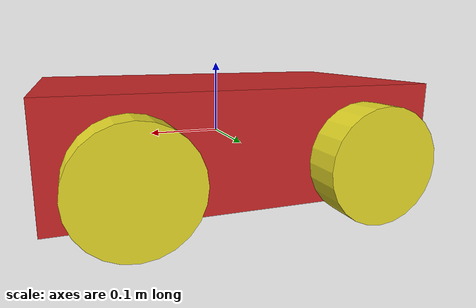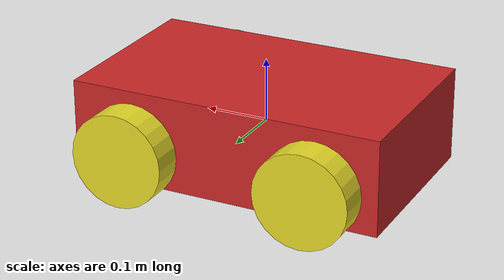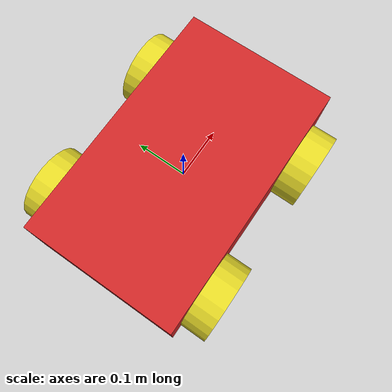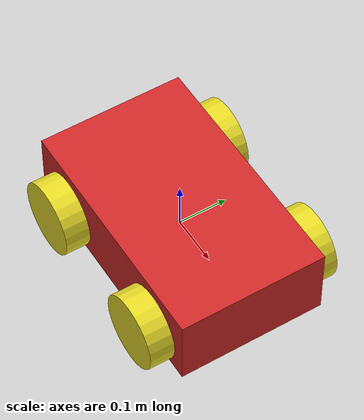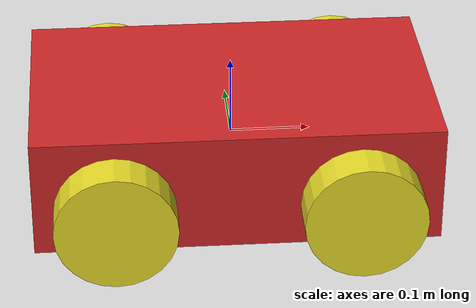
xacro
<?xml version= "1.0" ?>
<robot name="differential_drive_robot" xmlns:xacro="http://www.ros.org/wiki/xacro">
	<!-- Body dimensions -->
	<xacro:property name="body_link_x_dim" value="0.5"/>
	<xacro:property name="body_link_y_dim" value="0.3"/>
	<xacro:property name="body_link_z_dim" value="0.15"/>
	<!-- Wheel dimensions -->
	<xacro:property name="wheel_link_radius" value="0.075"/>
	<xacro:property name="wheel_link_length" value="0.05"/>
	<xacro:property name="wheel_link_lenght" value="0.05"/>
	<xacro:property name="wheel_link_z_location" value="-0.05"/>
	<!-- Material density -->
	<xacro:property name="body_density" value="2710.0"/>
	<xacro:property name="wheel_density" value="2710.0"/>
	<!-- Pi constant -->
	<xacro:property name="pi_const" value="3.14159265"/>
	<!-- Robot body and wheel mass -->
	<xacro:property name="body_mass" value="${body_density*body_link_x_dim*body_link_y_dim*body_link_z_dim}"/>
	<xacro:property name="wheel_mass" value="${wheel_density*pi_const*wheel_link_radius*wheel_link_radius*wheel_link_length}"/>
	<!-- Moments of inertia of the wheel -->
	<xacro:property name="Iz_wheel" value="$(0.5*wheel_mass*wheel_link_radius*wheel_link_radius)" />
	<xacro:property name="I_wheel" value="${(1.0/12.0)*wheel_mass*(3.0*wheel_link_radius*wheel_link_radius+wheel_link_length*wheel_link_length)}" />
	<!-- This macro defines the complete inertial section of the wheel -->
	<!-- It is used later in the code -->
	<xacro:macro name="inertia_wheel">
		<inertial>
			<origin rpy="0 0 0" xz="0 0 0"/>
			<mass value="${wheel_mass}"/>
			<inertia
            ixx="${(1.0/12.0)*wheel_mass*(3.0*wheel_link_radius*wheel_link_radius+wheel_link_length*wheel_link_length)}"
            ixy="0.0"
            ixz="0.0"
            iyy="${(1.0/12.0)*wheel_mass*(3.0*wheel_link_radius*wheel_link_radius+wheel_link_length*wheel_link_length)}"
            iyz="0"
            izz="${0.5*wheel_mass*wheel_link_radius*wheel_link_radius}" />
		</inertial>
	</xacro:macro>
	<!-- over here we include the file that defines the extra gazebo options and motion cntrol driver -->
	<xacro:include filename="$(find robot_model_pkg)/urdf/robot.gazebo" />
	<!-- FROM HERE WE DEFINE LINKS, JOINTS -->
	<!-- we need this dummy link otherwise gazebo will complain -->
	<link name="dummy">
    </link>
	<joint name="dummy_joint" type="fixed">
		<parent link="dummy"/>
		<child link="body_link"/>
	</joint>
	<!-- START: BODY LINK OF THE ROBOT -->
	<link name="body_link">
		<visual>
			<geometry>
				<box size="${body_link_x_dim} ${body_link_y_dim} ${body_link_z_dim}" />
			</geometry>
			<origin rpy="0 0 0" xyz="0 0 0"/>
		</visual>
		<collision>
			<geometry>
				<box size="${body_link_x_dim} ${body_link_y_dim} ${body_link_z_dim}" />
			</geometry>
			<origin rpy="0 0 0" xyz="0 0 0"/>
		</collision>
		<inertial>
			<origin rpy="0 0 0" xyz="0 0 0"/>
			<mass value="${body_mass}"/>
			<inertia
            ixx="${(1/12)*body_mass*(body_link_y_dim*body_link_y_dim + body_link_z_dim*body_link_z_dim)}"
            ixy="0"
            ixz="0"
            iyy="${(1/12)*body_mass*(body_link_x_dim*body_link_x_dim + body_link_z_dim*body_link_z_dim)}"
            iyz="0"
            izz="${(1/12)*body_mass*(body_link_y_dim*body_link_y_dim + body_link_x_dim*body_link_x_dim)}"/>
		</inertial>
	</link>
	<!-- END:BODY OF THE LINK -->
	<!-- START: BACK RIGHT WHEEL OF THE ROBOT AND THE JOINT -->
	<joint name= "wheel1_joint" type="continuous" >
		<parent link="body_link"/>
		<child link="wheel1_link" />
		<origin xyz="-0.15 -0.175 -0.02" rpy="0 0 0" />
		<axis xyz="0 1 0"/>
		<limit effort="1000" velocity="1000"/>
		<dynamics damping="1.0" friction="1.0"/>
	</joint>
	<link name="wheel1_link">
		<visual>
			<origin rpy="1.570795 0 0" xyz="0 0 0"/>
			<geometry>
				<cylinder length="${wheel_link_length}" radius="${wheel_link_radius}"/>
			</geometry>
		</visual>
		<collision>
			<origin rpy="1.570795 0 0" xyz="0 0 0"/>
			<geometry>
				<cylinder length="${wheel_link_length}" radius="${wheel_link_radius}"/>
			</geometry>
		</collision>
		<xacro:inertia_wheel />
	</link>
	<!-- END:BACK RIGHT WHEEL OF THE ROBOT AND THE JOINT-->
	<!-- START:BACK LEFT WHEEL OF THE ROBOT AND THE JOINT-->
	<joint name= "wheel2_joint" type="continuous" >
		<parent link="body_link"/>
		<child link="wheel2_link" />
		<origin xyz="-0.15 0.175 -0.02" rpy="0 0 0" />
		<axis xyz="0 1 0"/>
		<limit effort="1000" velocity="1000"/>
		<dynamics damping="1.0" friction="1.0"/>
	</joint>
	<link name="wheel2_link">
		<visual>
			<origin rpy="1.570795 0 0" xyz="0 0 0"/>
			<geometry>
				<cylinder length="${wheel_link_length}" radius="${wheel_link_radius}"/>
			</geometry>
		</visual>
		<collision>
			<origin rpy="1.570795 0 0" xyz="0 0 0"/>
			<geometry>
				<cylinder length="${wheel_link_length}" radius="${wheel_link_radius}"/>
			</geometry>
		</collision>
		<xacro:inertia_wheel/>
	</link>
	<!-- END:BACK LEFT WHEEL OF THE ROBOT AND THE JOINT-->
	<!-- START:FRONT RIGHT WHEEL OF THE ROBOT AND THE JOINT-->
	<joint name= "wheel3_joint" type="continuous" >
		<parent link="body_link"/>
		<child link="wheel3_link" />
		<origin xyz="0.15 -0.175 -0.02" rpy="0 0 0" />
		<axis xyz="0 1 0"/>
		<limit effort="1000" velocity="1000"/>
		<dynamics damping="1.0" friction="1.0"/>
	</joint>
	<link name="wheel3_link">
		<visual>
			<origin rpy="1.570795 0 0" xyz="0 0 0"/>
			<geometry>
				<cylinder length="${wheel_link_length}" radius="${wheel_link_radius}"/>
			</geometry>
		</visual>
		<collision>
			<origin rpy="1.570795 0 0" xyz="0 0 0"/>
			<geometry>
				<cylinder length="${wheel_link_length}" radius="${wheel_link_radius}"/>
			</geometry>
		</collision>
		<xacro:inertia_wheel/>
	</link>
	<!-- END:FRONT RIGHT WHEEL OF THE ROBOT AND THE JOINT-->
	<!-- START:FRONT LEFT WHEEL OF THE ROBOT AND THE JOINT-->
	<joint name= "wheel4_joint" type="continuous" >
		<parent link="body_link"/>
		<child link="wheel4_link" />
		<origin xyz="0.15 0.175 -0.02" rpy="0 0 0" />
		<axis xyz="0 1 0"/>
		<limit effort="1000" velocity="1000"/>
		<dynamics damping="1.0" friction="1.0"/>
	</joint>
	<link name="wheel4_link">
		<visual>
			<origin rpy="1.570795 0 0" xyz="0 0 0"/>
			<geometry>
				<cylinder length="${wheel_link_length}" radius="${wheel_link_radius}"/>
			</geometry>
		</visual>
		<collision>
			<origin rpy="1.570795 0 0" xyz="0 0 0"/>
			<geometry>
				<cylinder length="${wheel_link_length}" radius="${wheel_link_radius}"/>
			</geometry>
		</collision>
		<xacro:inertia_wheel/>
	</link>
	<!-- END: FRONT LEFT WHEEL OF THE ROBOT AND THE JOINT-->
</robot>
